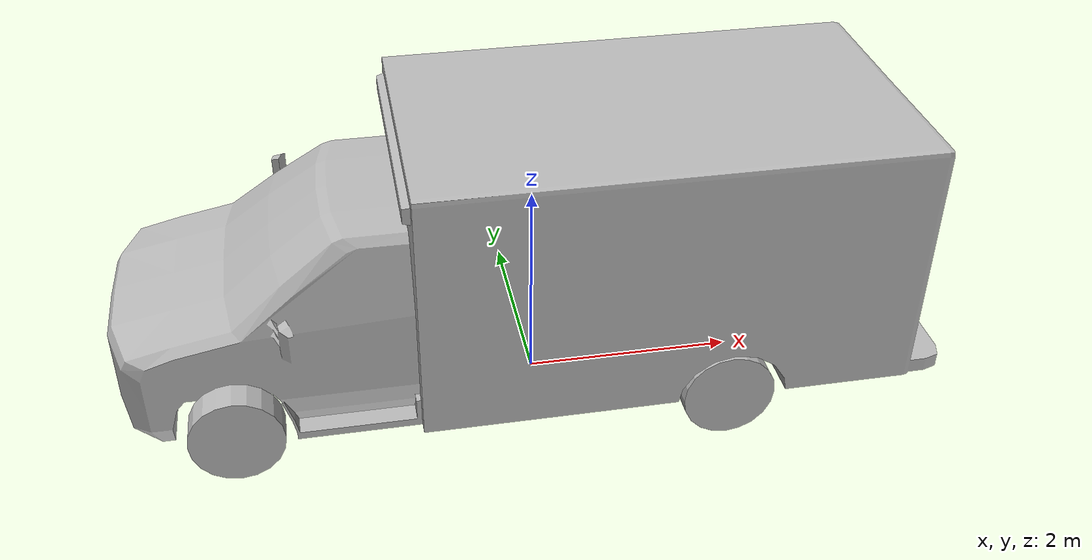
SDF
<?xml version="1.0" ?>
<sdf version="1.6">
  <model name="ambulance">
    <static>true</static>
    <link name="link">
      <collision name="collision">
      <pose>0 0 0 0 0 -1.57079632679</pose>
        <geometry>
          <mesh>
            <scale>0.0254 0.0254 0.0254</scale>
            <uri>model://ambulance/meshes/ambulance.obj</uri>
          </mesh>
        </geometry>
      </collision>
      <visual name="visual">
      <pose>0 0 0 0 0 -1.57079632679</pose>
        <geometry>
          <mesh>
            <scale>0.0254 0.0254 0.0254</scale>
            <uri>model://ambulance/meshes/ambulance.obj</uri>
          </mesh>
        </geometry>
      </visual>
    </link>
  </model>
</sdf>
